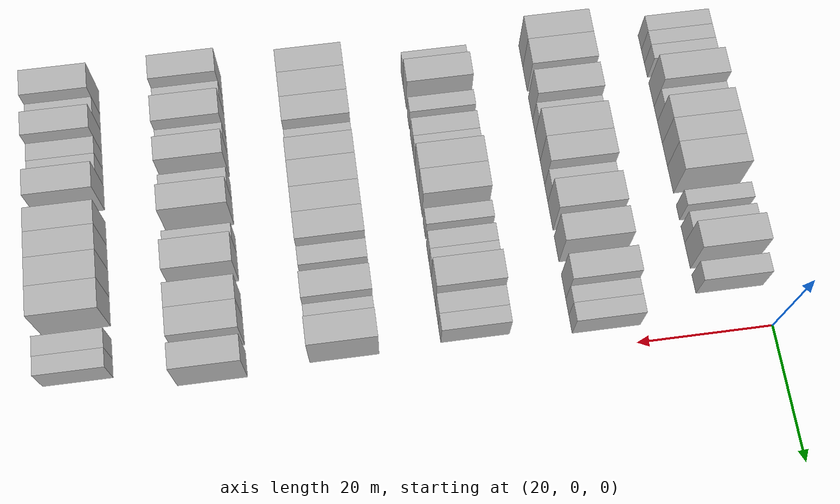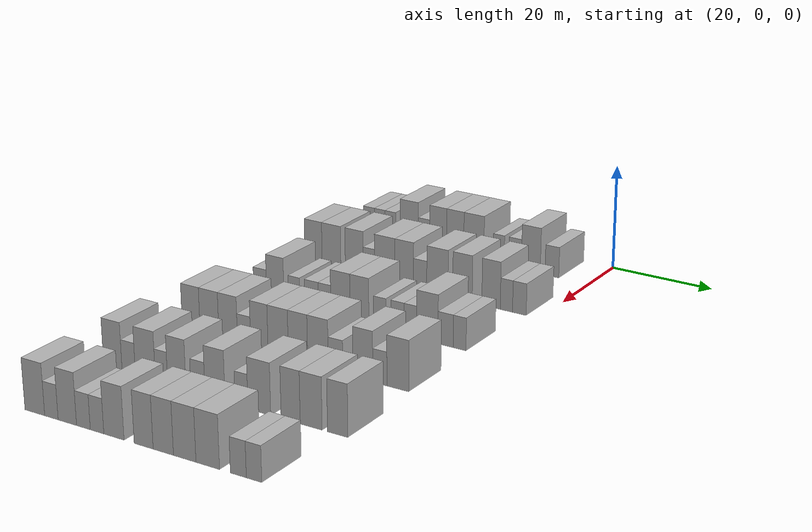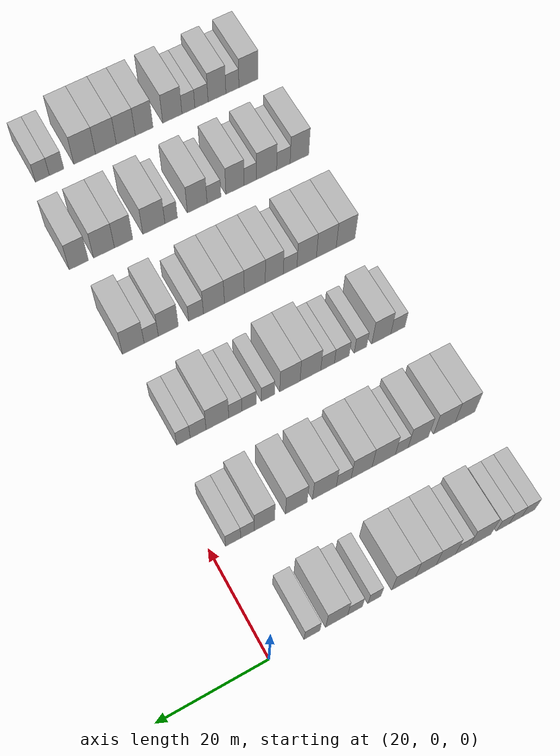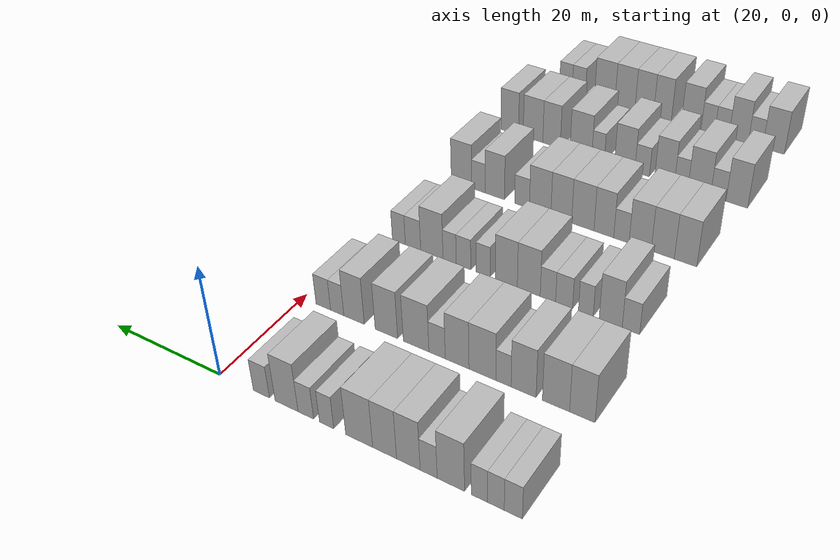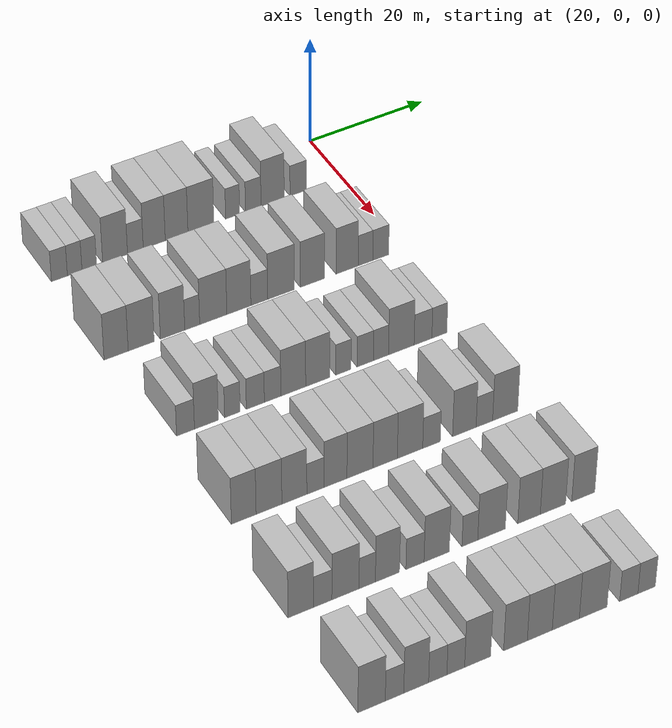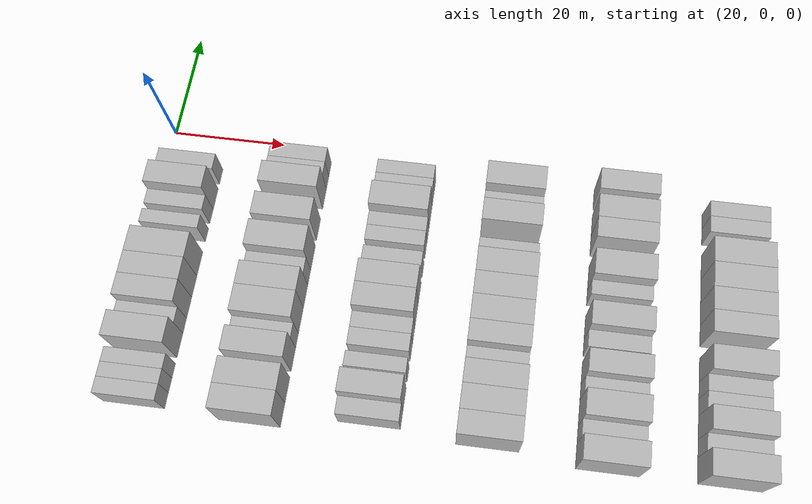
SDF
<sdf version="1.6">
 <world name="default">
  <model name="building_78">
   <static>1</static>
   <pose>25.0000 -48.1108 0 0.000000 0.000000 0.000000</pose>
   <link name="link">
    <pose>0 0 3.00 0 0 0</pose>
    <collision name="collision"><geometry><box><size>10.0000 2.6267 6.0000</size></box></geometry></collision>
    <visual name="visual">
     <cast_shadows>0</cast_shadows>
     <geometry><box><size>10.0000 2.6267 6.0000</size></box></geometry>
     <material>
      <script>
       <uri>model://HANNAS_wall/materials/scripts</uri>
       <uri>model://HANNAS_wall/materials/textures</uri>
       <name>vrc/HANNAS_wall</name>
      </script>
     </material>
    </visual>
   </link>
  </model>
  <model name="building_79">
   <static>1</static>
   <pose>25.0000 -45.5913 0 0.000000 0.000000 0.000000</pose>
   <link name="link">
    <pose>0 0 3.00 0 0 0</pose>
    <collision name="collision"><geometry><box><size>10.0000 2.4122 6.0000</size></box></geometry></collision>
    <visual name="visual">
     <cast_shadows>0</cast_shadows>
     <geometry><box><size>10.0000 2.4122 6.0000</size></box></geometry>
     <material>
      <script>
       <uri>model://HANNAS_wall/materials/scripts</uri>
       <uri>model://HANNAS_wall/materials/textures</uri>
       <name>vrc/HANNAS_wall</name>
      </script>
     </material>
    </visual>
   </link>
  </model>
  <model name="building_80">
   <static>1</static>
   <pose>25.0000 -43.1689 0 0.000000 0.000000 0.000000</pose>
   <link name="link">
    <pose>0 0 3.00 0 0 0</pose>
    <collision name="collision"><geometry><box><size>10.0000 2.4325 6.0000</size></box></geometry></collision>
    <visual name="visual">
     <cast_shadows>0</cast_shadows>
     <geometry><box><size>10.0000 2.4325 6.0000</size></box></geometry>
     <material>
      <script>
       <uri>model://HANNAS_wall/materials/scripts</uri>
       <uri>model://HANNAS_wall/materials/textures</uri>
       <name>vrc/HANNAS_wall</name>
      </script>
     </material>
    </visual>
   </link>
  </model>
  <model name="building_81">
   <static>1</static>
   <pose>25.0000 -38.8767 0 0.000000 0.000000 0.000000</pose>
   <link name="link">
    <pose>0 0 4.50 0 0 0</pose>
    <collision name="collision"><geometry><box><size>10.0000 4.1520 9.0000</size></box></geometry></collision>
    <visual name="visual">
     <cast_shadows>0</cast_shadows>
     <geometry><box><size>10.0000 4.1520 9.0000</size></box></geometry>
     <material>
      <script>
       <uri>model://HANNAS_wall/materials/scripts</uri>
       <uri>model://HANNAS_wall/materials/textures</uri>
       <name>vrc/HANNAS_wall</name>
      </script>
     </material>
    </visual>
   </link>
  </model>
  <model name="building_82">
   <static>1</static>
   <pose>25.0000 -35.4856 0 0.000000 0.000000 0.000000</pose>
   <link name="link">
    <pose>0 0 3.00 0 0 0</pose>
    <collision name="collision"><geometry><box><size>10.0000 2.6302 6.0000</size></box></geometry></collision>
    <visual name="visual">
     <cast_shadows>0</cast_shadows>
     <geometry><box><size>10.0000 2.6302 6.0000</size></box></geometry>
     <material>
      <script>
       <uri>model://HANNAS_wall/materials/scripts</uri>
       <uri>model://HANNAS_wall/materials/textures</uri>
       <name>vrc/HANNAS_wall</name>
      </script>
     </material>
    </visual>
   </link>
  </model>
  <model name="building_83">
   <static>1</static>
   <pose>25.0000 -32.3130 0 0.000000 0.000000 0.000000</pose>
   <link name="link">
    <pose>0 0 4.50 0 0 0</pose>
    <collision name="collision"><geometry><box><size>10.0000 3.7150 9.0000</size></box></geometry></collision>
    <visual name="visual">
     <cast_shadows>0</cast_shadows>
     <geometry><box><size>10.0000 3.7150 9.0000</size></box></geometry>
     <material>
      <script>
       <uri>model://HANNAS_wall/materials/scripts</uri>
       <uri>model://HANNAS_wall/materials/textures</uri>
       <name>vrc/HANNAS_wall</name>
      </script>
     </material>
    </visual>
   </link>
  </model>
  <model name="building_84">
   <static>1</static>
   <pose>25.0000 -28.5368 0 0.000000 0.000000 0.000000</pose>
   <link name="link">
    <pose>0 0 4.50 0 0 0</pose>
    <collision name="collision"><geometry><box><size>10.0000 3.8374 9.0000</size></box></geometry></collision>
    <visual name="visual">
     <cast_shadows>0</cast_shadows>
     <geometry><box><size>10.0000 3.8374 9.0000</size></box></geometry>
     <material>
      <script>
       <uri>model://HANNAS_wall/materials/scripts</uri>
       <uri>model://HANNAS_wall/materials/textures</uri>
       <name>vrc/HANNAS_wall</name>
      </script>
     </material>
    </visual>
   </link>
  </model>
  <model name="building_85">
   <static>1</static>
   <pose>25.0000 -24.4070 0 0.000000 0.000000 0.000000</pose>
   <link name="link">
    <pose>0 0 4.50 0 0 0</pose>
    <collision name="collision"><geometry><box><size>10.0000 4.4222 9.0000</size></box></geometry></collision>
    <visual name="visual">
     <cast_shadows>0</cast_shadows>
     <geometry><box><size>10.0000 4.4222 9.0000</size></box></geometry>
     <material>
      <script>
       <uri>model://HANNAS_wall/materials/scripts</uri>
       <uri>model://HANNAS_wall/materials/textures</uri>
       <name>vrc/HANNAS_wall</name>
      </script>
     </material>
    </visual>
   </link>
  </model>
  <model name="building_86">
   <static>1</static>
   <pose>25.0000 -18.9923 0 0.000000 0.000000 0.000000</pose>
   <link name="link">
    <pose>0 0 3.00 0 0 0</pose>
    <collision name="collision"><geometry><box><size>10.0000 2.4071 6.0000</size></box></geometry></collision>
    <visual name="visual">
     <cast_shadows>0</cast_shadows>
     <geometry><box><size>10.0000 2.4071 6.0000</size></box></geometry>
     <material>
      <script>
       <uri>model://HANNAS_wall/materials/scripts</uri>
       <uri>model://HANNAS_wall/materials/textures</uri>
       <name>vrc/HANNAS_wall</name>
      </script>
     </material>
    </visual>
   </link>
  </model>
  <model name="building_87">
   <static>1</static>
   <pose>25.0000 -15.4436 0 0.000000 0.000000 0.000000</pose>
   <link name="link">
    <pose>0 0 3.00 0 0 0</pose>
    <collision name="collision"><geometry><box><size>10.0000 2.6903 6.0000</size></box></geometry></collision>
    <visual name="visual">
     <cast_shadows>0</cast_shadows>
     <geometry><box><size>10.0000 2.6903 6.0000</size></box></geometry>
     <material>
      <script>
       <uri>model://HANNAS_wall/materials/scripts</uri>
       <uri>model://HANNAS_wall/materials/textures</uri>
       <name>vrc/HANNAS_wall</name>
      </script>
     </material>
    </visual>
   </link>
  </model>
  <model name="building_88">
   <static>1</static>
   <pose>25.0000 -12.0891 0 0.000000 0.000000 0.000000</pose>
   <link name="link">
    <pose>0 0 4.50 0 0 0</pose>
    <collision name="collision"><geometry><box><size>10.0000 4.0188 9.0000</size></box></geometry></collision>
    <visual name="visual">
     <cast_shadows>0</cast_shadows>
     <geometry><box><size>10.0000 4.0188 9.0000</size></box></geometry>
     <material>
      <script>
       <uri>model://HANNAS_wall/materials/scripts</uri>
       <uri>model://HANNAS_wall/materials/textures</uri>
       <name>vrc/HANNAS_wall</name>
      </script>
     </material>
    </visual>
   </link>
  </model>
  <model name="building_89">
   <static>1</static>
   <pose>25.0000 -7.6370 0 0.000000 0.000000 0.000000</pose>
   <link name="link">
    <pose>0 0 3.00 0 0 0</pose>
    <collision name="collision"><geometry><box><size>10.0000 2.8855 6.0000</size></box></geometry></collision>
    <visual name="visual">
     <cast_shadows>0</cast_shadows>
     <geometry><box><size>10.0000 2.8855 6.0000</size></box></geometry>
     <material>
      <script>
       <uri>model://HANNAS_wall/materials/scripts</uri>
       <uri>model://HANNAS_wall/materials/textures</uri>
       <name>vrc/HANNAS_wall</name>
      </script>
     </material>
    </visual>
   </link>
  </model>
  <model name="building_255">
   <static>1</static>
   <pose>44.0000 -48.1248 0 0.000000 0.000000 0.000000</pose>
   <link name="link">
    <pose>0 0 4.50 0 0 0</pose>
    <collision name="collision"><geometry><box><size>10.0000 3.9135 9.0000</size></box></geometry></collision>
    <visual name="visual">
     <cast_shadows>0</cast_shadows>
     <geometry><box><size>10.0000 3.9135 9.0000</size></box></geometry>
     <material>
      <script>
       <uri>model://HANNAS_wall/materials/scripts</uri>
       <uri>model://HANNAS_wall/materials/textures</uri>
       <name>vrc/HANNAS_wall</name>
      </script>
     </material>
    </visual>
   </link>
  </model>
  <model name="building_256">
   <static>1</static>
   <pose>44.0000 -44.0522 0 0.000000 0.000000 0.000000</pose>
   <link name="link">
    <pose>0 0 4.50 0 0 0</pose>
    <collision name="collision"><geometry><box><size>10.0000 4.2317 9.0000</size></box></geometry></collision>
    <visual name="visual">
     <cast_shadows>0</cast_shadows>
     <geometry><box><size>10.0000 4.2317 9.0000</size></box></geometry>
     <material>
      <script>
       <uri>model://HANNAS_wall/materials/scripts</uri>
       <uri>model://HANNAS_wall/materials/textures</uri>
       <name>vrc/HANNAS_wall</name>
      </script>
     </material>
    </visual>
   </link>
  </model>
  <model name="building_257">
   <static>1</static>
   <pose>44.0000 -38.9351 0 0.000000 0.000000 0.000000</pose>
   <link name="link">
    <pose>0 0 4.50 0 0 0</pose>
    <collision name="collision"><geometry><box><size>10.0000 4.0027 9.0000</size></box></geometry></collision>
    <visual name="visual">
     <cast_shadows>0</cast_shadows>
     <geometry><box><size>10.0000 4.0027 9.0000</size></box></geometry>
     <material>
      <script>
       <uri>model://HANNAS_wall/materials/scripts</uri>
       <uri>model://HANNAS_wall/materials/textures</uri>
       <name>vrc/HANNAS_wall</name>
      </script>
     </material>
    </visual>
   </link>
  </model>
  <model name="building_258">
   <static>1</static>
   <pose>44.0000 -35.7036 0 0.000000 0.000000 0.000000</pose>
   <link name="link">
    <pose>0 0 3.00 0 0 0</pose>
    <collision name="collision"><geometry><box><size>10.0000 2.4603 6.0000</size></box></geometry></collision>
    <visual name="visual">
     <cast_shadows>0</cast_shadows>
     <geometry><box><size>10.0000 2.4603 6.0000</size></box></geometry>
     <material>
      <script>
       <uri>model://HANNAS_wall/materials/scripts</uri>
       <uri>model://HANNAS_wall/materials/textures</uri>
       <name>vrc/HANNAS_wall</name>
      </script>
     </material>
    </visual>
   </link>
  </model>
  <model name="building_259">
   <static>1</static>
   <pose>44.0000 -32.2255 0 0.000000 0.000000 0.000000</pose>
   <link name="link">
    <pose>0 0 4.50 0 0 0</pose>
    <collision name="collision"><geometry><box><size>10.0000 4.4960 9.0000</size></box></geometry></collision>
    <visual name="visual">
     <cast_shadows>0</cast_shadows>
     <geometry><box><size>10.0000 4.4960 9.0000</size></box></geometry>
     <material>
      <script>
       <uri>model://HANNAS_wall/materials/scripts</uri>
       <uri>model://HANNAS_wall/materials/textures</uri>
       <name>vrc/HANNAS_wall</name>
      </script>
     </material>
    </visual>
   </link>
  </model>
  <model name="building_260">
   <static>1</static>
   <pose>44.0000 -27.9746 0 0.000000 0.000000 0.000000</pose>
   <link name="link">
    <pose>0 0 4.50 0 0 0</pose>
    <collision name="collision"><geometry><box><size>10.0000 4.0059 9.0000</size></box></geometry></collision>
    <visual name="visual">
     <cast_shadows>0</cast_shadows>
     <geometry><box><size>10.0000 4.0059 9.0000</size></box></geometry>
     <material>
      <script>
       <uri>model://HANNAS_wall/materials/scripts</uri>
       <uri>model://HANNAS_wall/materials/textures</uri>
       <name>vrc/HANNAS_wall</name>
      </script>
     </material>
    </visual>
   </link>
  </model>
  <model name="building_261">
   <static>1</static>
   <pose>44.0000 -24.5660 0 0.000000 0.000000 0.000000</pose>
   <link name="link">
    <pose>0 0 3.00 0 0 0</pose>
    <collision name="collision"><geometry><box><size>10.0000 2.8114 6.0000</size></box></geometry></collision>
    <visual name="visual">
     <cast_shadows>0</cast_shadows>
     <geometry><box><size>10.0000 2.8114 6.0000</size></box></geometry>
     <material>
      <script>
       <uri>model://HANNAS_wall/materials/scripts</uri>
       <uri>model://HANNAS_wall/materials/textures</uri>
       <name>vrc/HANNAS_wall</name>
      </script>
     </material>
    </visual>
   </link>
  </model>
  <model name="building_262">
   <static>1</static>
   <pose>44.0000 -20.9103 0 0.000000 0.000000 0.000000</pose>
   <link name="link">
    <pose>0 0 4.50 0 0 0</pose>
    <collision name="collision"><geometry><box><size>10.0000 4.5000 9.0000</size></box></geometry></collision>
    <visual name="visual">
     <cast_shadows>0</cast_shadows>
     <geometry><box><size>10.0000 4.5000 9.0000</size></box></geometry>
     <material>
      <script>
       <uri>model://HANNAS_wall/materials/scripts</uri>
       <uri>model://HANNAS_wall/materials/textures</uri>
       <name>vrc/HANNAS_wall</name>
      </script>
     </material>
    </visual>
   </link>
  </model>
  <model name="building_263">
   <static>1</static>
   <pose>44.0000 -15.6321 0 0.000000 0.000000 0.000000</pose>
   <link name="link">
    <pose>0 0 4.50 0 0 0</pose>
    <collision name="collision"><geometry><box><size>10.0000 4.0564 9.0000</size></box></geometry></collision>
    <visual name="visual">
     <cast_shadows>0</cast_shadows>
     <geometry><box><size>10.0000 4.0564 9.0000</size></box></geometry>
     <material>
      <script>
       <uri>model://HANNAS_wall/materials/scripts</uri>
       <uri>model://HANNAS_wall/materials/textures</uri>
       <name>vrc/HANNAS_wall</name>
      </script>
     </material>
    </visual>
   </link>
  </model>
  <model name="building_264">
   <static>1</static>
   <pose>44.0000 -9.7104 0 0.000000 0.000000 0.000000</pose>
   <link name="link">
    <pose>0 0 4.50 0 0 0</pose>
    <collision name="collision"><geometry><box><size>10.0000 3.7871 9.0000</size></box></geometry></collision>
    <visual name="visual">
     <cast_shadows>0</cast_shadows>
     <geometry><box><size>10.0000 3.7871 9.0000</size></box></geometry>
     <material>
      <script>
       <uri>model://HANNAS_wall/materials/scripts</uri>
       <uri>model://HANNAS_wall/materials/textures</uri>
       <name>vrc/HANNAS_wall</name>
      </script>
     </material>
    </visual>
   </link>
  </model>
  <model name="building_265">
   <static>1</static>
   <pose>44.0000 -6.5710 0 0.000000 0.000000 0.000000</pose>
   <link name="link">
    <pose>0 0 3.00 0 0 0</pose>
    <collision name="collision"><geometry><box><size>10.0000 2.4917 6.0000</size></box></geometry></collision>
    <visual name="visual">
     <cast_shadows>0</cast_shadows>
     <geometry><box><size>10.0000 2.4917 6.0000</size></box></geometry>
     <material>
      <script>
       <uri>model://HANNAS_wall/materials/scripts</uri>
       <uri>model://HANNAS_wall/materials/textures</uri>
       <name>vrc/HANNAS_wall</name>
      </script>
     </material>
    </visual>
   </link>
  </model>
  <model name="building_266">
   <static>1</static>
   <pose>44.0000 -3.9458 0 0.000000 0.000000 0.000000</pose>
   <link name="link">
    <pose>0 0 3.00 0 0 0</pose>
    <collision name="collision"><geometry><box><size>10.0000 2.7587 6.0000</size></box></geometry></collision>
    <visual name="visual">
     <cast_shadows>0</cast_shadows>
     <geometry><box><size>10.0000 2.7587 6.0000</size></box></geometry>
     <material>
      <script>
       <uri>model://HANNAS_wall/materials/scripts</uri>
       <uri>model://HANNAS_wall/materials/textures</uri>
       <name>vrc/HANNAS_wall</name>
      </script>
     </material>
    </visual>
   </link>
  </model>
  <model name="building_416">
   <static>1</static>
   <pose>63.0000 -46.5851 0 0.000000 0.000000 0.000000</pose>
   <link name="link">
    <pose>0 0 3.00 0 0 0</pose>
    <collision name="collision"><geometry><box><size>10.0000 2.8525 6.0000</size></box></geometry></collision>
    <visual name="visual">
     <cast_shadows>0</cast_shadows>
     <geometry><box><size>10.0000 2.8525 6.0000</size></box></geometry>
     <material>
      <script>
       <uri>model://HANNAS_wall/materials/scripts</uri>
       <uri>model://HANNAS_wall/materials/textures</uri>
       <name>vrc/HANNAS_wall</name>
      </script>
     </material>
    </visual>
   </link>
  </model>
  <model name="building_417">
   <static>1</static>
   <pose>63.0000 -43.2496 0 0.000000 0.000000 0.000000</pose>
   <link name="link">
    <pose>0 0 4.50 0 0 0</pose>
    <collision name="collision"><geometry><box><size>10.0000 3.8184 9.0000</size></box></geometry></collision>
    <visual name="visual">
     <cast_shadows>0</cast_shadows>
     <geometry><box><size>10.0000 3.8184 9.0000</size></box></geometry>
     <material>
      <script>
       <uri>model://HANNAS_wall/materials/scripts</uri>
       <uri>model://HANNAS_wall/materials/textures</uri>
       <name>vrc/HANNAS_wall</name>
      </script>
     </material>
    </visual>
   </link>
  </model>
  <model name="building_418">
   <static>1</static>
   <pose>63.0000 -39.0917 0 0.000000 0.000000 0.000000</pose>
   <link name="link">
    <pose>0 0 3.00 0 0 0</pose>
    <collision name="collision"><geometry><box><size>10.0000 2.4975 6.0000</size></box></geometry></collision>
    <visual name="visual">
     <cast_shadows>0</cast_shadows>
     <geometry><box><size>10.0000 2.4975 6.0000</size></box></geometry>
     <material>
      <script>
       <uri>model://HANNAS_wall/materials/scripts</uri>
       <uri>model://HANNAS_wall/materials/textures</uri>
       <name>vrc/HANNAS_wall</name>
      </script>
     </material>
    </visual>
   </link>
  </model>
  <model name="building_419">
   <static>1</static>
   <pose>63.0000 -35.3820 0 0.000000 0.000000 0.000000</pose>
   <link name="link">
    <pose>0 0 3.00 0 0 0</pose>
    <collision name="collision"><geometry><box><size>10.0000 2.9217 6.0000</size></box></geometry></collision>
    <visual name="visual">
     <cast_shadows>0</cast_shadows>
     <geometry><box><size>10.0000 2.9217 6.0000</size></box></geometry>
     <material>
      <script>
       <uri>model://HANNAS_wall/materials/scripts</uri>
       <uri>model://HANNAS_wall/materials/textures</uri>
       <name>vrc/HANNAS_wall</name>
      </script>
     </material>
    </visual>
   </link>
  </model>
  <model name="building_420">
   <static>1</static>
   <pose>63.0000 -32.5799 0 0.000000 0.000000 0.000000</pose>
   <link name="link">
    <pose>0 0 3.00 0 0 0</pose>
    <collision name="collision"><geometry><box><size>10.0000 2.6826 6.0000</size></box></geometry></collision>
    <visual name="visual">
     <cast_shadows>0</cast_shadows>
     <geometry><box><size>10.0000 2.6826 6.0000</size></box></geometry>
     <material>
      <script>
       <uri>model://HANNAS_wall/materials/scripts</uri>
       <uri>model://HANNAS_wall/materials/textures</uri>
       <name>vrc/HANNAS_wall</name>
      </script>
     </material>
    </visual>
   </link>
  </model>
  <model name="building_421">
   <static>1</static>
   <pose>63.0000 -29.2115 0 0.000000 0.000000 0.000000</pose>
   <link name="link">
    <pose>0 0 4.50 0 0 0</pose>
    <collision name="collision"><geometry><box><size>10.0000 4.0541 9.0000</size></box></geometry></collision>
    <visual name="visual">
     <cast_shadows>0</cast_shadows>
     <geometry><box><size>10.0000 4.0541 9.0000</size></box></geometry>
     <material>
      <script>
       <uri>model://HANNAS_wall/materials/scripts</uri>
       <uri>model://HANNAS_wall/materials/textures</uri>
       <name>vrc/HANNAS_wall</name>
      </script>
     </material>
    </visual>
   </link>
  </model>
  <model name="building_422">
   <static>1</static>
   <pose>63.0000 -25.2162 0 0.000000 0.000000 0.000000</pose>
   <link name="link">
    <pose>0 0 4.50 0 0 0</pose>
    <collision name="collision"><geometry><box><size>10.0000 3.9363 9.0000</size></box></geometry></collision>
    <visual name="visual">
     <cast_shadows>0</cast_shadows>
     <geometry><box><size>10.0000 3.9363 9.0000</size></box></geometry>
     <material>
      <script>
       <uri>model://HANNAS_wall/materials/scripts</uri>
       <uri>model://HANNAS_wall/materials/textures</uri>
       <name>vrc/HANNAS_wall</name>
      </script>
     </material>
    </visual>
   </link>
  </model>
  <model name="building_423">
   <static>1</static>
   <pose>63.0000 -20.9784 0 0.000000 0.000000 0.000000</pose>
   <link name="link">
    <pose>0 0 3.00 0 0 0</pose>
    <collision name="collision"><geometry><box><size>10.0000 2.5394 6.0000</size></box></geometry></collision>
    <visual name="visual">
     <cast_shadows>0</cast_shadows>
     <geometry><box><size>10.0000 2.5394 6.0000</size></box></geometry>
     <material>
      <script>
       <uri>model://HANNAS_wall/materials/scripts</uri>
       <uri>model://HANNAS_wall/materials/textures</uri>
       <name>vrc/HANNAS_wall</name>
      </script>
     </material>
    </visual>
   </link>
  </model>
  <model name="building_424">
   <static>1</static>
   <pose>63.0000 -17.3486 0 0.000000 0.000000 0.000000</pose>
   <link name="link">
    <pose>0 0 3.00 0 0 0</pose>
    <collision name="collision"><geometry><box><size>10.0000 2.7200 6.0000</size></box></geometry></collision>
    <visual name="visual">
     <cast_shadows>0</cast_shadows>
     <geometry><box><size>10.0000 2.7200 6.0000</size></box></geometry>
     <material>
      <script>
       <uri>model://HANNAS_wall/materials/scripts</uri>
       <uri>model://HANNAS_wall/materials/textures</uri>
       <name>vrc/HANNAS_wall</name>
      </script>
     </material>
    </visual>
   </link>
  </model>
  <model name="building_425">
   <static>1</static>
   <pose>63.0000 -14.7342 0 0.000000 0.000000 0.000000</pose>
   <link name="link">
    <pose>0 0 3.00 0 0 0</pose>
    <collision name="collision"><geometry><box><size>10.0000 2.5087 6.0000</size></box></geometry></collision>
    <visual name="visual">
     <cast_shadows>0</cast_shadows>
     <geometry><box><size>10.0000 2.5087 6.0000</size></box></geometry>
     <material>
      <script>
       <uri>model://HANNAS_wall/materials/scripts</uri>
       <uri>model://HANNAS_wall/materials/textures</uri>
       <name>vrc/HANNAS_wall</name>
      </script>
     </material>
    </visual>
   </link>
  </model>
  <model name="building_426">
   <static>1</static>
   <pose>63.0000 -11.3332 0 0.000000 0.000000 0.000000</pose>
   <link name="link">
    <pose>0 0 4.50 0 0 0</pose>
    <collision name="collision"><geometry><box><size>10.0000 4.2934 9.0000</size></box></geometry></collision>
    <visual name="visual">
     <cast_shadows>0</cast_shadows>
     <geometry><box><size>10.0000 4.2934 9.0000</size></box></geometry>
     <material>
      <script>
       <uri>model://HANNAS_wall/materials/scripts</uri>
       <uri>model://HANNAS_wall/materials/textures</uri>
       <name>vrc/HANNAS_wall</name>
      </script>
     </material>
    </visual>
   </link>
  </model>
  <model name="building_427">
   <static>1</static>
   <pose>63.0000 -7.6869 0 0.000000 0.000000 0.000000</pose>
   <link name="link">
    <pose>0 0 3.00 0 0 0</pose>
    <collision name="collision"><geometry><box><size>10.0000 2.9992 6.0000</size></box></geometry></collision>
    <visual name="visual">
     <cast_shadows>0</cast_shadows>
     <geometry><box><size>10.0000 2.9992 6.0000</size></box></geometry>
     <material>
      <script>
       <uri>model://HANNAS_wall/materials/scripts</uri>
       <uri>model://HANNAS_wall/materials/textures</uri>
       <name>vrc/HANNAS_wall</name>
      </script>
     </material>
    </visual>
   </link>
  </model>
  <model name="building_428">
   <static>1</static>
   <pose>63.0000 -4.9172 0 0.000000 0.000000 0.000000</pose>
   <link name="link">
    <pose>0 0 3.00 0 0 0</pose>
    <collision name="collision"><geometry><box><size>10.0000 2.5402 6.0000</size></box></geometry></collision>
    <visual name="visual">
     <cast_shadows>0</cast_shadows>
     <geometry><box><size>10.0000 2.5402 6.0000</size></box></geometry>
     <material>
      <script>
       <uri>model://HANNAS_wall/materials/scripts</uri>
       <uri>model://HANNAS_wall/materials/textures</uri>
       <name>vrc/HANNAS_wall</name>
      </script>
     </material>
    </visual>
   </link>
  </model>
  <model name="building_582">
   <static>1</static>
   <pose>82.0000 -47.3443 0 0.000000 0.000000 0.000000</pose>
   <link name="link">
    <pose>0 0 4.50 0 0 0</pose>
    <collision name="collision"><geometry><box><size>10.0000 3.8644 9.0000</size></box></geometry></collision>
    <visual name="visual">
     <cast_shadows>0</cast_shadows>
     <geometry><box><size>10.0000 3.8644 9.0000</size></box></geometry>
     <material>
      <script>
       <uri>model://HANNAS_wall/materials/scripts</uri>
       <uri>model://HANNAS_wall/materials/textures</uri>
       <name>vrc/HANNAS_wall</name>
      </script>
     </material>
    </visual>
   </link>
  </model>
  <model name="building_583">
   <static>1</static>
   <pose>82.0000 -43.3888 0 0.000000 0.000000 0.000000</pose>
   <link name="link">
    <pose>0 0 4.50 0 0 0</pose>
    <collision name="collision"><geometry><box><size>10.0000 4.0465 9.0000</size></box></geometry></collision>
    <visual name="visual">
     <cast_shadows>0</cast_shadows>
     <geometry><box><size>10.0000 4.0465 9.0000</size></box></geometry>
     <material>
      <script>
       <uri>model://HANNAS_wall/materials/scripts</uri>
       <uri>model://HANNAS_wall/materials/textures</uri>
       <name>vrc/HANNAS_wall</name>
      </script>
     </material>
    </visual>
   </link>
  </model>
  <model name="building_584">
   <static>1</static>
   <pose>82.0000 -39.3925 0 0.000000 0.000000 0.000000</pose>
   <link name="link">
    <pose>0 0 4.50 0 0 0</pose>
    <collision name="collision"><geometry><box><size>10.0000 3.9461 9.0000</size></box></geometry></collision>
    <visual name="visual">
     <cast_shadows>0</cast_shadows>
     <geometry><box><size>10.0000 3.9461 9.0000</size></box></geometry>
     <material>
      <script>
       <uri>model://HANNAS_wall/materials/scripts</uri>
       <uri>model://HANNAS_wall/materials/textures</uri>
       <name>vrc/HANNAS_wall</name>
      </script>
     </material>
    </visual>
   </link>
  </model>
  <model name="building_585">
   <static>1</static>
   <pose>82.0000 -36.0362 0 0.000000 0.000000 0.000000</pose>
   <link name="link">
    <pose>0 0 3.00 0 0 0</pose>
    <collision name="collision"><geometry><box><size>10.0000 2.7665 6.0000</size></box></geometry></collision>
    <visual name="visual">
     <cast_shadows>0</cast_shadows>
     <geometry><box><size>10.0000 2.7665 6.0000</size></box></geometry>
     <material>
      <script>
       <uri>model://HANNAS_wall/materials/scripts</uri>
       <uri>model://HANNAS_wall/materials/textures</uri>
       <name>vrc/HANNAS_wall</name>
      </script>
     </material>
    </visual>
   </link>
  </model>
  <model name="building_586">
   <static>1</static>
   <pose>82.0000 -32.8423 0 0.000000 0.000000 0.000000</pose>
   <link name="link">
    <pose>0 0 4.50 0 0 0</pose>
    <collision name="collision"><geometry><box><size>10.0000 3.6213 9.0000</size></box></geometry></collision>
    <visual name="visual">
     <cast_shadows>0</cast_shadows>
     <geometry><box><size>10.0000 3.6213 9.0000</size></box></geometry>
     <material>
      <script>
       <uri>model://HANNAS_wall/materials/scripts</uri>
       <uri>model://HANNAS_wall/materials/textures</uri>
       <name>vrc/HANNAS_wall</name>
      </script>
     </material>
    </visual>
   </link>
  </model>
  <model name="building_587">
   <static>1</static>
   <pose>82.0000 -28.9447 0 0.000000 0.000000 0.000000</pose>
   <link name="link">
    <pose>0 0 4.50 0 0 0</pose>
    <collision name="collision"><geometry><box><size>10.0000 4.1741 9.0000</size></box></geometry></collision>
    <visual name="visual">
     <cast_shadows>0</cast_shadows>
     <geometry><box><size>10.0000 4.1741 9.0000</size></box></geometry>
     <material>
      <script>
       <uri>model://HANNAS_wall/materials/scripts</uri>
       <uri>model://HANNAS_wall/materials/textures</uri>
       <name>vrc/HANNAS_wall</name>
      </script>
     </material>
    </visual>
   </link>
  </model>
  <model name="building_588">
   <static>1</static>
   <pose>82.0000 -24.8931 0 0.000000 0.000000 0.000000</pose>
   <link name="link">
    <pose>0 0 4.50 0 0 0</pose>
    <collision name="collision"><geometry><box><size>10.0000 3.9290 9.0000</size></box></geometry></collision>
    <visual name="visual">
     <cast_shadows>0</cast_shadows>
     <geometry><box><size>10.0000 3.9290 9.0000</size></box></geometry>
     <material>
      <script>
       <uri>model://HANNAS_wall/materials/scripts</uri>
       <uri>model://HANNAS_wall/materials/textures</uri>
       <name>vrc/HANNAS_wall</name>
      </script>
     </material>
    </visual>
   </link>
  </model>
  <model name="building_589">
   <static>1</static>
   <pose>82.0000 -20.8646 0 0.000000 0.000000 0.000000</pose>
   <link name="link">
    <pose>0 0 4.50 0 0 0</pose>
    <collision name="collision"><geometry><box><size>10.0000 4.1280 9.0000</size></box></geometry></collision>
    <visual name="visual">
     <cast_shadows>0</cast_shadows>
     <geometry><box><size>10.0000 4.1280 9.0000</size></box></geometry>
     <material>
      <script>
       <uri>model://HANNAS_wall/materials/scripts</uri>
       <uri>model://HANNAS_wall/materials/textures</uri>
       <name>vrc/HANNAS_wall</name>
      </script>
     </material>
    </visual>
   </link>
  </model>
  <model name="building_590">
   <static>1</static>
   <pose>82.0000 -17.3562 0 0.000000 0.000000 0.000000</pose>
   <link name="link">
    <pose>0 0 3.00 0 0 0</pose>
    <collision name="collision"><geometry><box><size>10.0000 2.8889 6.0000</size></box></geometry></collision>
    <visual name="visual">
     <cast_shadows>0</cast_shadows>
     <geometry><box><size>10.0000 2.8889 6.0000</size></box></geometry>
     <material>
      <script>
       <uri>model://HANNAS_wall/materials/scripts</uri>
       <uri>model://HANNAS_wall/materials/textures</uri>
       <name>vrc/HANNAS_wall</name>
      </script>
     </material>
    </visual>
   </link>
  </model>
  <model name="building_591">
   <static>1</static>
   <pose>82.0000 -11.9745 0 0.000000 0.000000 0.000000</pose>
   <link name="link">
    <pose>0 0 4.50 0 0 0</pose>
    <collision name="collision"><geometry><box><size>10.0000 3.8746 9.0000</size></box></geometry></collision>
    <visual name="visual">
     <cast_shadows>0</cast_shadows>
     <geometry><box><size>10.0000 3.8746 9.0000</size></box></geometry>
     <material>
      <script>
       <uri>model://HANNAS_wall/materials/scripts</uri>
       <uri>model://HANNAS_wall/materials/textures</uri>
       <name>vrc/HANNAS_wall</name>
      </script>
     </material>
    </visual>
   </link>
  </model>
  <model name="building_592">
   <static>1</static>
   <pose>82.0000 -8.6710 0 0.000000 0.000000 0.000000</pose>
   <link name="link">
    <pose>0 0 3.00 0 0 0</pose>
    <collision name="collision"><geometry><box><size>10.0000 2.7324 6.0000</size></box></geometry></collision>
    <visual name="visual">
     <cast_shadows>0</cast_shadows>
     <geometry><box><size>10.0000 2.7324 6.0000</size></box></geometry>
     <material>
      <script>
       <uri>model://HANNAS_wall/materials/scripts</uri>
       <uri>model://HANNAS_wall/materials/textures</uri>
       <name>vrc/HANNAS_wall</name>
      </script>
     </material>
    </visual>
   </link>
  </model>
  <model name="building_593">
   <static>1</static>
   <pose>82.0000 -5.2132 0 0.000000 0.000000 0.000000</pose>
   <link name="link">
    <pose>0 0 4.50 0 0 0</pose>
    <collision name="collision"><geometry><box><size>10.0000 4.1831 9.0000</size></box></geometry></collision>
    <visual name="visual">
     <cast_shadows>0</cast_shadows>
     <geometry><box><size>10.0000 4.1831 9.0000</size></box></geometry>
     <material>
      <script>
       <uri>model://HANNAS_wall/materials/scripts</uri>
       <uri>model://HANNAS_wall/materials/textures</uri>
       <name>vrc/HANNAS_wall</name>
      </script>
     </material>
    </visual>
   </link>
  </model>
  <model name="building_746">
   <static>1</static>
   <pose>101.0000 -48.7765 0 0.000000 0.000000 0.000000</pose>
   <link name="link">
    <pose>0 0 4.50 0 0 0</pose>
    <collision name="collision"><geometry><box><size>10.0000 3.9108 9.0000</size></box></geometry></collision>
    <visual name="visual">
     <cast_shadows>0</cast_shadows>
     <geometry><box><size>10.0000 3.9108 9.0000</size></box></geometry>
     <material>
      <script>
       <uri>model://HANNAS_wall/materials/scripts</uri>
       <uri>model://HANNAS_wall/materials/textures</uri>
       <name>vrc/HANNAS_wall</name>
      </script>
     </material>
    </visual>
   </link>
  </model>
  <model name="building_747">
   <static>1</static>
   <pose>101.0000 -45.4123 0 0.000000 0.000000 0.000000</pose>
   <link name="link">
    <pose>0 0 3.00 0 0 0</pose>
    <collision name="collision"><geometry><box><size>10.0000 2.8176 6.0000</size></box></geometry></collision>
    <visual name="visual">
     <cast_shadows>0</cast_shadows>
     <geometry><box><size>10.0000 2.8176 6.0000</size></box></geometry>
     <material>
      <script>
       <uri>model://HANNAS_wall/materials/scripts</uri>
       <uri>model://HANNAS_wall/materials/textures</uri>
       <name>vrc/HANNAS_wall</name>
      </script>
     </material>
    </visual>
   </link>
  </model>
  <model name="building_748">
   <static>1</static>
   <pose>101.0000 -41.9074 0 0.000000 0.000000 0.000000</pose>
   <link name="link">
    <pose>0 0 4.50 0 0 0</pose>
    <collision name="collision"><geometry><box><size>10.0000 4.1923 9.0000</size></box></geometry></collision>
    <visual name="visual">
     <cast_shadows>0</cast_shadows>
     <geometry><box><size>10.0000 4.1923 9.0000</size></box></geometry>
     <material>
      <script>
       <uri>model://HANNAS_wall/materials/scripts</uri>
       <uri>model://HANNAS_wall/materials/textures</uri>
       <name>vrc/HANNAS_wall</name>
      </script>
     </material>
    </visual>
   </link>
  </model>
  <model name="building_749">
   <static>1</static>
   <pose>101.0000 -38.5388 0 0.000000 0.000000 0.000000</pose>
   <link name="link">
    <pose>0 0 3.00 0 0 0</pose>
    <collision name="collision"><geometry><box><size>10.0000 2.5449 6.0000</size></box></geometry></collision>
    <visual name="visual">
     <cast_shadows>0</cast_shadows>
     <geometry><box><size>10.0000 2.5449 6.0000</size></box></geometry>
     <material>
      <script>
       <uri>model://HANNAS_wall/materials/scripts</uri>
       <uri>model://HANNAS_wall/materials/textures</uri>
       <name>vrc/HANNAS_wall</name>
      </script>
     </material>
    </visual>
   </link>
  </model>
  <model name="building_750">
   <static>1</static>
   <pose>101.0000 -35.3838 0 0.000000 0.000000 0.000000</pose>
   <link name="link">
    <pose>0 0 4.50 0 0 0</pose>
    <collision name="collision"><geometry><box><size>10.0000 3.7650 9.0000</size></box></geometry></collision>
    <visual name="visual">
     <cast_shadows>0</cast_shadows>
     <geometry><box><size>10.0000 3.7650 9.0000</size></box></geometry>
     <material>
      <script>
       <uri>model://HANNAS_wall/materials/scripts</uri>
       <uri>model://HANNAS_wall/materials/textures</uri>
       <name>vrc/HANNAS_wall</name>
      </script>
     </material>
    </visual>
   </link>
  </model>
  <model name="building_751">
   <static>1</static>
   <pose>101.0000 -31.0786 0 0.000000 0.000000 0.000000</pose>
   <link name="link">
    <pose>0 0 3.00 0 0 0</pose>
    <collision name="collision"><geometry><box><size>10.0000 2.8454 6.0000</size></box></geometry></collision>
    <visual name="visual">
     <cast_shadows>0</cast_shadows>
     <geometry><box><size>10.0000 2.8454 6.0000</size></box></geometry>
     <material>
      <script>
       <uri>model://HANNAS_wall/materials/scripts</uri>
       <uri>model://HANNAS_wall/materials/textures</uri>
       <name>vrc/HANNAS_wall</name>
      </script>
     </material>
    </visual>
   </link>
  </model>
  <model name="building_752">
   <static>1</static>
   <pose>101.0000 -27.6556 0 0.000000 0.000000 0.000000</pose>
   <link name="link">
    <pose>0 0 4.50 0 0 0</pose>
    <collision name="collision"><geometry><box><size>10.0000 4.0006 9.0000</size></box></geometry></collision>
    <visual name="visual">
     <cast_shadows>0</cast_shadows>
     <geometry><box><size>10.0000 4.0006 9.0000</size></box></geometry>
     <material>
      <script>
       <uri>model://HANNAS_wall/materials/scripts</uri>
       <uri>model://HANNAS_wall/materials/textures</uri>
       <name>vrc/HANNAS_wall</name>
      </script>
     </material>
    </visual>
   </link>
  </model>
  <model name="building_753">
   <static>1</static>
   <pose>101.0000 -22.3973 0 0.000000 0.000000 0.000000</pose>
   <link name="link">
    <pose>0 0 3.00 0 0 0</pose>
    <collision name="collision"><geometry><box><size>10.0000 2.5162 6.0000</size></box></geometry></collision>
    <visual name="visual">
     <cast_shadows>0</cast_shadows>
     <geometry><box><size>10.0000 2.5162 6.0000</size></box></geometry>
     <material>
      <script>
       <uri>model://HANNAS_wall/materials/scripts</uri>
       <uri>model://HANNAS_wall/materials/textures</uri>
       <name>vrc/HANNAS_wall</name>
      </script>
     </material>
    </visual>
   </link>
  </model>
  <model name="building_754">
   <static>1</static>
   <pose>101.0000 -18.9271 0 0.000000 0.000000 0.000000</pose>
   <link name="link">
    <pose>0 0 4.50 0 0 0</pose>
    <collision name="collision"><geometry><box><size>10.0000 4.4241 9.0000</size></box></geometry></collision>
    <visual name="visual">
     <cast_shadows>0</cast_shadows>
     <geometry><box><size>10.0000 4.4241 9.0000</size></box></geometry>
     <material>
      <script>
       <uri>model://HANNAS_wall/materials/scripts</uri>
       <uri>model://HANNAS_wall/materials/textures</uri>
       <name>vrc/HANNAS_wall</name>
      </script>
     </material>
    </visual>
   </link>
  </model>
  <model name="building_755">
   <static>1</static>
   <pose>101.0000 -12.8987 0 0.000000 0.000000 0.000000</pose>
   <link name="link">
    <pose>0 0 4.50 0 0 0</pose>
    <collision name="collision"><geometry><box><size>10.0000 3.6328 9.0000</size></box></geometry></collision>
    <visual name="visual">
     <cast_shadows>0</cast_shadows>
     <geometry><box><size>10.0000 3.6328 9.0000</size></box></geometry>
     <material>
      <script>
       <uri>model://HANNAS_wall/materials/scripts</uri>
       <uri>model://HANNAS_wall/materials/textures</uri>
       <name>vrc/HANNAS_wall</name>
      </script>
     </material>
    </visual>
   </link>
  </model>
  <model name="building_756">
   <static>1</static>
   <pose>101.0000 -9.0186 0 0.000000 0.000000 0.000000</pose>
   <link name="link">
    <pose>0 0 4.50 0 0 0</pose>
    <collision name="collision"><geometry><box><size>10.0000 4.1273 9.0000</size></box></geometry></collision>
    <visual name="visual">
     <cast_shadows>0</cast_shadows>
     <geometry><box><size>10.0000 4.1273 9.0000</size></box></geometry>
     <material>
      <script>
       <uri>model://HANNAS_wall/materials/scripts</uri>
       <uri>model://HANNAS_wall/materials/textures</uri>
       <name>vrc/HANNAS_wall</name>
      </script>
     </material>
    </visual>
   </link>
  </model>
  <model name="building_757">
   <static>1</static>
   <pose>101.0000 -4.0685 0 0.000000 0.000000 0.000000</pose>
   <link name="link">
    <pose>0 0 4.50 0 0 0</pose>
    <collision name="collision"><geometry><box><size>10.0000 3.7728 9.0000</size></box></geometry></collision>
    <visual name="visual">
     <cast_shadows>0</cast_shadows>
     <geometry><box><size>10.0000 3.7728 9.0000</size></box></geometry>
     <material>
      <script>
       <uri>model://HANNAS_wall/materials/scripts</uri>
       <uri>model://HANNAS_wall/materials/textures</uri>
       <name>vrc/HANNAS_wall</name>
      </script>
     </material>
    </visual>
   </link>
  </model>
  <model name="building_922">
   <static>1</static>
   <pose>120.0000 -48.6342 0 0.000000 0.000000 0.000000</pose>
   <link name="link">
    <pose>0 0 4.50 0 0 0</pose>
    <collision name="collision"><geometry><box><size>10.0000 4.1167 9.0000</size></box></geometry></collision>
    <visual name="visual">
     <cast_shadows>0</cast_shadows>
     <geometry><box><size>10.0000 4.1167 9.0000</size></box></geometry>
     <material>
      <script>
       <uri>model://HANNAS_wall/materials/scripts</uri>
       <uri>model://HANNAS_wall/materials/textures</uri>
       <name>vrc/HANNAS_wall</name>
      </script>
     </material>
    </visual>
   </link>
  </model>
  <model name="building_923">
   <static>1</static>
   <pose>120.0000 -45.1854 0 0.000000 0.000000 0.000000</pose>
   <link name="link">
    <pose>0 0 3.00 0 0 0</pose>
    <collision name="collision"><geometry><box><size>10.0000 2.7809 6.0000</size></box></geometry></collision>
    <visual name="visual">
     <cast_shadows>0</cast_shadows>
     <geometry><box><size>10.0000 2.7809 6.0000</size></box></geometry>
     <material>
      <script>
       <uri>model://HANNAS_wall/materials/scripts</uri>
       <uri>model://HANNAS_wall/materials/textures</uri>
       <name>vrc/HANNAS_wall</name>
      </script>
     </material>
    </visual>
   </link>
  </model>
  <model name="building_924">
   <static>1</static>
   <pose>120.0000 -41.9107 0 0.000000 0.000000 0.000000</pose>
   <link name="link">
    <pose>0 0 4.50 0 0 0</pose>
    <collision name="collision"><geometry><box><size>10.0000 3.7683 9.0000</size></box></geometry></collision>
    <visual name="visual">
     <cast_shadows>0</cast_shadows>
     <geometry><box><size>10.0000 3.7683 9.0000</size></box></geometry>
     <material>
      <script>
       <uri>model://HANNAS_wall/materials/scripts</uri>
       <uri>model://HANNAS_wall/materials/textures</uri>
       <name>vrc/HANNAS_wall</name>
      </script>
     </material>
    </visual>
   </link>
  </model>
  <model name="building_925">
   <static>1</static>
   <pose>120.0000 -38.6343 0 0.000000 0.000000 0.000000</pose>
   <link name="link">
    <pose>0 0 3.00 0 0 0</pose>
    <collision name="collision"><geometry><box><size>10.0000 2.7845 6.0000</size></box></geometry></collision>
    <visual name="visual">
     <cast_shadows>0</cast_shadows>
     <geometry><box><size>10.0000 2.7845 6.0000</size></box></geometry>
     <material>
      <script>
       <uri>model://HANNAS_wall/materials/scripts</uri>
       <uri>model://HANNAS_wall/materials/textures</uri>
       <name>vrc/HANNAS_wall</name>
      </script>
     </material>
    </visual>
   </link>
  </model>
  <model name="building_926">
   <static>1</static>
   <pose>120.0000 -35.8845 0 0.000000 0.000000 0.000000</pose>
   <link name="link">
    <pose>0 0 3.00 0 0 0</pose>
    <collision name="collision"><geometry><box><size>10.0000 2.7153 6.0000</size></box></geometry></collision>
    <visual name="visual">
     <cast_shadows>0</cast_shadows>
     <geometry><box><size>10.0000 2.7153 6.0000</size></box></geometry>
     <material>
      <script>
       <uri>model://HANNAS_wall/materials/scripts</uri>
       <uri>model://HANNAS_wall/materials/textures</uri>
       <name>vrc/HANNAS_wall</name>
      </script>
     </material>
    </visual>
   </link>
  </model>
  <model name="building_927">
   <static>1</static>
   <pose>120.0000 -32.5190 0 0.000000 0.000000 0.000000</pose>
   <link name="link">
    <pose>0 0 4.50 0 0 0</pose>
    <collision name="collision"><geometry><box><size>10.0000 4.0156 9.0000</size></box></geometry></collision>
    <visual name="visual">
     <cast_shadows>0</cast_shadows>
     <geometry><box><size>10.0000 4.0156 9.0000</size></box></geometry>
     <material>
      <script>
       <uri>model://HANNAS_wall/materials/scripts</uri>
       <uri>model://HANNAS_wall/materials/textures</uri>
       <name>vrc/HANNAS_wall</name>
      </script>
     </material>
    </visual>
   </link>
  </model>
  <model name="building_928">
   <static>1</static>
   <pose>120.0000 -26.6702 0 0.000000 0.000000 0.000000</pose>
   <link name="link">
    <pose>0 0 4.50 0 0 0</pose>
    <collision name="collision"><geometry><box><size>10.0000 3.6821 9.0000</size></box></geometry></collision>
    <visual name="visual">
     <cast_shadows>0</cast_shadows>
     <geometry><box><size>10.0000 3.6821 9.0000</size></box></geometry>
     <material>
      <script>
       <uri>model://HANNAS_wall/materials/scripts</uri>
       <uri>model://HANNAS_wall/materials/textures</uri>
       <name>vrc/HANNAS_wall</name>
      </script>
     </material>
    </visual>
   </link>
  </model>
  <model name="building_929">
   <static>1</static>
   <pose>120.0000 -22.8795 0 0.000000 0.000000 0.000000</pose>
   <link name="link">
    <pose>0 0 4.50 0 0 0</pose>
    <collision name="collision"><geometry><box><size>10.0000 3.8993 9.0000</size></box></geometry></collision>
    <visual name="visual">
     <cast_shadows>0</cast_shadows>
     <geometry><box><size>10.0000 3.8993 9.0000</size></box></geometry>
     <material>
      <script>
       <uri>model://HANNAS_wall/materials/scripts</uri>
       <uri>model://HANNAS_wall/materials/textures</uri>
       <name>vrc/HANNAS_wall</name>
      </script>
     </material>
    </visual>
   </link>
  </model>
  <model name="building_930">
   <static>1</static>
   <pose>120.0000 -18.7978 0 0.000000 0.000000 0.000000</pose>
   <link name="link">
    <pose>0 0 4.50 0 0 0</pose>
    <collision name="collision"><geometry><box><size>10.0000 4.2640 9.0000</size></box></geometry></collision>
    <visual name="visual">
     <cast_shadows>0</cast_shadows>
     <geometry><box><size>10.0000 4.2640 9.0000</size></box></geometry>
     <material>
      <script>
       <uri>model://HANNAS_wall/materials/scripts</uri>
       <uri>model://HANNAS_wall/materials/textures</uri>
       <name>vrc/HANNAS_wall</name>
      </script>
     </material>
    </visual>
   </link>
  </model>
  <model name="building_931">
   <static>1</static>
   <pose>120.0000 -14.4669 0 0.000000 0.000000 0.000000</pose>
   <link name="link">
    <pose>0 0 4.50 0 0 0</pose>
    <collision name="collision"><geometry><box><size>10.0000 4.3977 9.0000</size></box></geometry></collision>
    <visual name="visual">
     <cast_shadows>0</cast_shadows>
     <geometry><box><size>10.0000 4.3977 9.0000</size></box></geometry>
     <material>
      <script>
       <uri>model://HANNAS_wall/materials/scripts</uri>
       <uri>model://HANNAS_wall/materials/textures</uri>
       <name>vrc/HANNAS_wall</name>
      </script>
     </material>
    </visual>
   </link>
  </model>
  <model name="building_932">
   <static>1</static>
   <pose>120.0000 -8.8094 0 0.000000 0.000000 0.000000</pose>
   <link name="link">
    <pose>0 0 3.00 0 0 0</pose>
    <collision name="collision"><geometry><box><size>10.0000 2.9173 6.0000</size></box></geometry></collision>
    <visual name="visual">
     <cast_shadows>0</cast_shadows>
     <geometry><box><size>10.0000 2.9173 6.0000</size></box></geometry>
     <material>
      <script>
       <uri>model://HANNAS_wall/materials/scripts</uri>
       <uri>model://HANNAS_wall/materials/textures</uri>
       <name>vrc/HANNAS_wall</name>
      </script>
     </material>
    </visual>
   </link>
  </model>
  <model name="building_933">
   <static>1</static>
   <pose>120.0000 -5.9490 0 0.000000 0.000000 0.000000</pose>
   <link name="link">
    <pose>0 0 3.00 0 0 0</pose>
    <collision name="collision"><geometry><box><size>10.0000 2.8034 6.0000</size></box></geometry></collision>
    <visual name="visual">
     <cast_shadows>0</cast_shadows>
     <geometry><box><size>10.0000 2.8034 6.0000</size></box></geometry>
     <material>
      <script>
       <uri>model://HANNAS_wall/materials/scripts</uri>
       <uri>model://HANNAS_wall/materials/textures</uri>
       <name>vrc/HANNAS_wall</name>
      </script>
     </material>
    </visual>
   </link>
  </model>
 </world>
</sdf>
